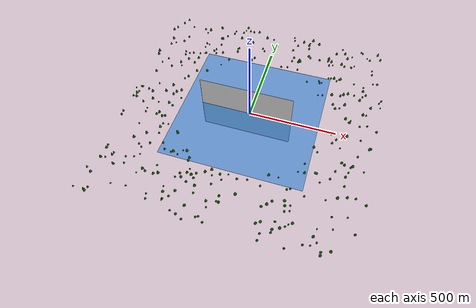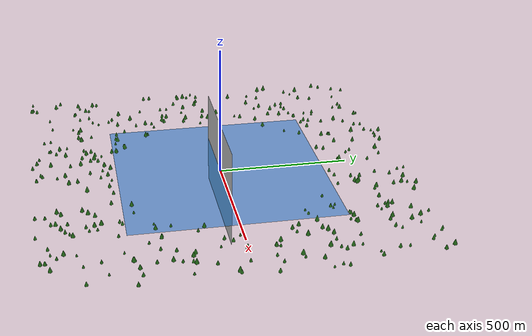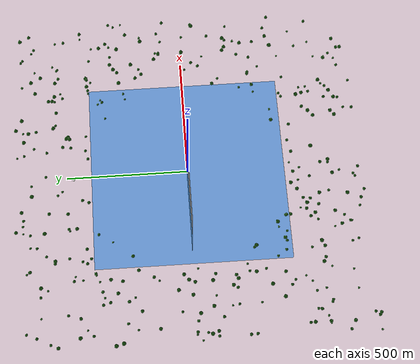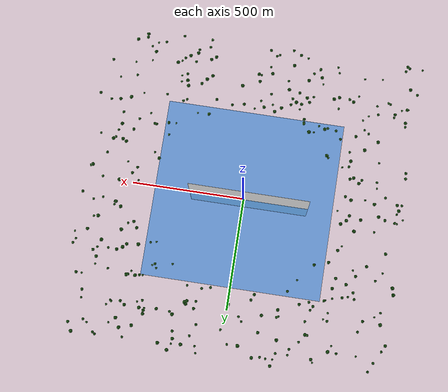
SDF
<sdf version="1.9">
 <world name="iris_terrain">
  <physics name="1ms" type="ignore">
   <max_step_size>0.001</max_step_size>
   <real_time_factor>1.0</real_time_factor>
  </physics>
  <plugin filename="gz-sim-physics-system" name="gz::sim::systems::Physics"/>
  <plugin filename="gz-sim-sensors-system" name="gz::sim::systems::Sensors">
   <render_engine>ogre2</render_engine>
  </plugin>
  <plugin filename="gz-sim-user-commands-system" name="gz::sim::systems::UserCommands"/>
  <plugin filename="gz-sim-scene-broadcaster-system" name="gz::sim::systems::SceneBroadcaster"/>
  <plugin filename="gz-sim-imu-system" name="gz::sim::systems::Imu"/>
  <plugin filename="gz-sim-navsat-system" name="gz::sim::systems::NavSat"/>
  <scene><ambient>1.0 1.0 1.0</ambient><background>0.8 0.8 0.8</background></scene>
  <spherical_coordinates>
   <latitude_deg>-35.363262</latitude_deg>
   <longitude_deg>149.165237</longitude_deg>
   <elevation>584</elevation>
   <heading_deg>0</heading_deg>
   <surface_model>EARTH_WGS84</surface_model>
  </spherical_coordinates>
  <light type="directional" name="sun">
   <pose>0 0 10 0 0 0</pose>
   <diffuse>0.8 0.8 0.8 1</diffuse>
   <specular>0.8 0.8 0.8 1</specular>
   <attenuation>
    <range>1000</range>
    <constant>0.9</constant>
    <linear>0.01</linear>
    <quadratic>0.001</quadratic>
   </attenuation>
   <direction>-0.5 0.1 -0.9</direction>
  </light>
  <model name="axes">
   <static>1</static>
   <link name="link">
    <visual name="r">
     <cast_shadows>0</cast_shadows>
     <pose>5 0 0.1 0 0 0</pose>
     <geometry><box><size>10 0.01 0.01</size></box></geometry>
     <material>
      <ambient>1 0 0 0.8</ambient>
      <diffuse>1 0 0 0.8</diffuse>
      <emissive>1 0 0 0.8</emissive>
      <specular>0.5 0.5 0.5 0.8</specular>
     </material>
    </visual>
    <visual name="g">
     <cast_shadows>0</cast_shadows>
     <pose>0 5 0.1 0 0 0</pose>
     <geometry><box><size>0.01 10 0.01</size></box></geometry>
     <material>
      <ambient>0 1 0 0.8</ambient>
      <diffuse>0 1 0 0.8</diffuse>
      <emissive>0 1 0 0.8</emissive>
      <specular>0.5 0.5 0.5 0.8</specular>
     </material>
    </visual>
    <visual name="b">
     <cast_shadows>0</cast_shadows>
     <pose>0 0 5.1 0 0 0</pose>
     <geometry><box><size>0.01 0.01 10</size></box></geometry>
     <material>
      <ambient>0 0 1 0.8</ambient>
      <diffuse>0 0 1 0.8</diffuse>
      <emissive>0 0 1 0.8</emissive>
      <specular>0.5 0.5 0.5 0.8</specular>
     </material>
    </visual>
    <sensor name="navsat_sensor" type="navsat"><always_on>1</always_on><update_rate>1</update_rate></sensor>
   </link>
  </model>
  <include><uri>model://terrain_pit_model</uri><pose degrees="true">0 0 0 0 0 0</pose></include>
  <model name="water_plane">
   <static>true</static>
   <pose>0 0 -1.0 0 0 0</pose>
   <link name="link">
    <visual name="water_visual">
     <geometry><box><size>800 800 0.1</size></box></geometry>
     <material>
      <ambient>0.0 0.4 0.8 0.5</ambient>
      <diffuse>0.0 0.4 0.8 0.5</diffuse>
      <specular>0.5 0.5 0.5 0.5</specular>
     </material>
     <transparency>0.5</transparency>
    </visual>
    <collision name="water_collision"><geometry><box><size>400 400 0.1</size></box></geometry></collision>
   </link>
  </model>
  <model name="overhead_camera">
   <static>true</static>
   <pose>0 0 1200 0 1.5708 1.5708</pose>
   <plugin filename="gz-sim-pose-publisher-system" name="gz::sim::systems::PosePublisher">
    <publish_link_pose>true</publish_link_pose>
    <use_pose_vector_msg>true</use_pose_vector_msg>
    <update_frequency>10</update_frequency>
   </plugin>
   <link name="camera_link">
    <sensor name="overhead_cam" type="camera">
     <always_on>true</always_on>
     <update_rate>1</update_rate>
     <camera>
      <horizontal_fov>1.39626</horizontal_fov>
      <image><width>960</width><height>960</height><format>R8G8B8</format></image>
      <clip><near>1.0</near><far>2500.0</far></clip>
     </camera>
     <topic>overhead_camera/image</topic>
    </sensor>
   </link>
  </model>
 </world>
</sdf>

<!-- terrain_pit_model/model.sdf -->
<sdf version="1.9">
  <model name="terrain_pit_model">
    <static>true</static>
    <pose>0 0 0 0 0 0</pose>

    <!-- ═══════════════════════════════════════════
         TERRAIN LINK
         1500 x 1500 x 5 m box with 400 m cylindrical pit
         ═══════════════════════════════════════════ -->
    <link name="terrain_link">
      <pose>0 0 0 0 0 0</pose>

      <!-- Visual: full terrain mesh with baked grass texture -->
      <visual name="terrain_visual">
        <pose>0 0 0 0 0 0</pose>
        <geometry>
          <mesh>
            <uri>model://terrain_pit_model/meshes/terrain.obj</uri>
            <scale>1 1 1</scale>
          </mesh>
        </geometry>
        <material>
          <ambient>0.12 0.32 0.05 1.0</ambient>
          <diffuse>1.0 1.0 1.0 1.0</diffuse>
          <specular>0.03 0.03 0.03 1.0</specular>
          <emissive>0 0 0 1</emissive>
          <pbr>
            <metal>
              <albedo_map>model://terrain_pit_model/textures/grass_color.png</albedo_map>
              <roughness_map>model://terrain_pit_model/textures/grass_roughness.png</roughness_map>
              <metalness>0.0</metalness>
            </metal>
          </pbr>
        </material>
      </visual>

      <!-- Collision: full mesh collision so sonar can detect the pit -->
      <collision name="terrain_collision">
        <pose>0 0 0 0 0 0</pose>
        <geometry>
          <mesh>
            <uri>model://terrain_pit_model/meshes/terrain.obj</uri>
            <scale>1 1 1</scale>
          </mesh>
        </geometry>
        <surface>
          <friction>
            <ode>
              <mu>0.8</mu>
              <mu2>0.8</mu2>
            </ode>
          </friction>
          <contact>
            <ode>
              <soft_cfm>0.0</soft_cfm>
              <soft_erp>0.2</soft_erp>
            </ode>
          </contact>
        </surface>
      </collision>

    </link>

    <!-- ═══════════════════════════════════════════
         TREES LINK
         All 350 low-poly proxy trees, joined mesh
         ═══════════════════════════════════════════ -->
    <link name="trees_link">
      <pose>0 0 0 0 0 0</pose>
      <visual name="trees_visual">
        <pose>0 0 0 0 0 0</pose>
        <geometry>
          <mesh>
            <uri>model://terrain_pit_model/meshes/trees.obj</uri>
            <scale>1 1 1</scale>
          </mesh>
        </geometry>
        <material>
          <ambient>0.05 0.20 0.03 1.0</ambient>
          <diffuse>0.10 0.35 0.06 1.0</diffuse>
          <specular>0.01 0.01 0.01 1.0</specular>
        </material>
      </visual>
    </link>

  </model>
</sdf>
